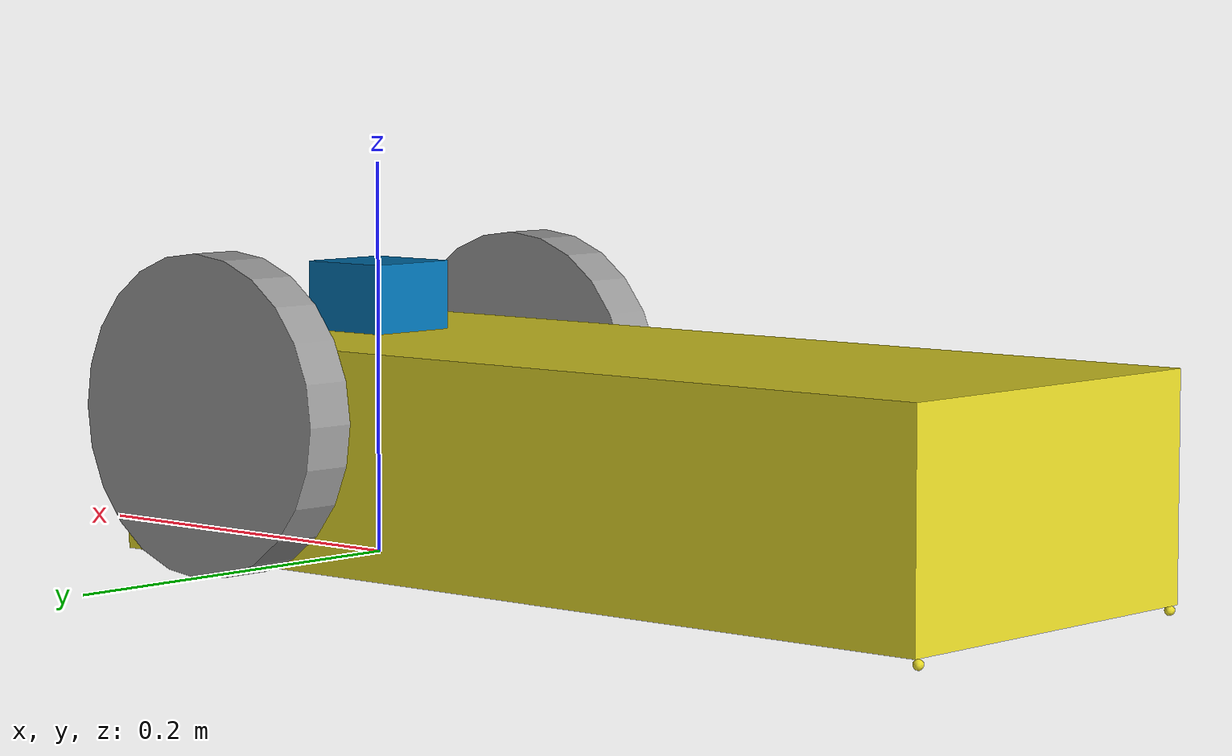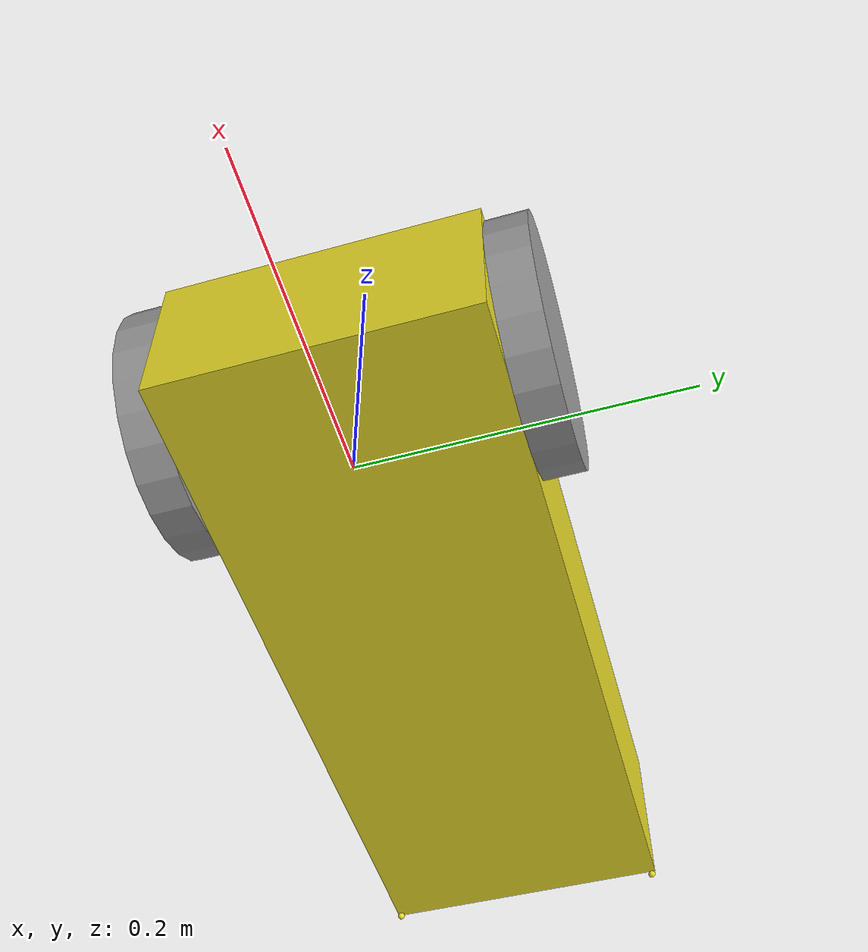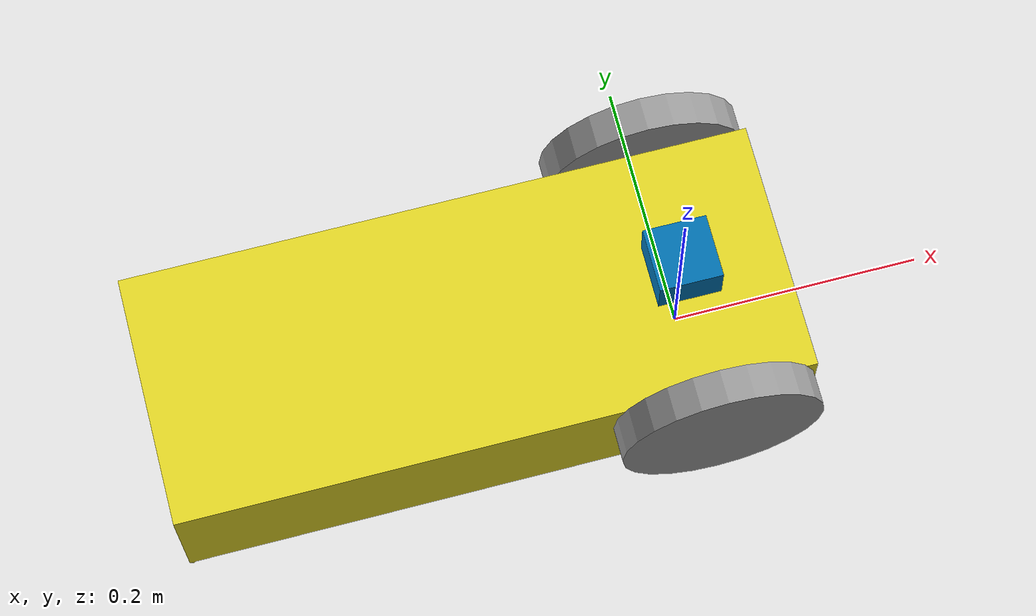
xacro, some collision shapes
<?xml version="1.0"?>
<!-- Revolute-Revolute Manipulator -->
<robot name="course_agv"
    xmlns:xacro="http://www.ros.org/wiki/xacro">

    <xacro:property name="PI" value="3.1415926535897931"/>
    <xacro:property name="mass" value="30" />
    <xacro:property name="length" value="0.5" />
    <xacro:property name="width" value="0.2" />
    <xacro:property name="height" value="0.11" />
    <xacro:property name="chassis_height" value="0.005" />
    <xacro:property name="caster_radius" value="${chassis_height/2}" />
    <xacro:property name="wheel_mass" value="0.1" />
    <xacro:property name="wheel_radius" value="0.08" />
    <xacro:property name="wheel_thickness" value="${wheel_radius/3}" />
    <xacro:property name="center_span" value="0.0" />
    <xacro:property name="camera_link" value="0.05" /> <!-- Size of square 'camera' box -->

    <!-- Import all Gazebo-customization elements, including Gazebo colors -->
    <xacro:include filename="$(find course_agv_description)/urdf/course_agv.gazebo" />
    <!-- Import Rviz colors -->
    <xacro:include filename="$(find course_agv_description)/urdf/materials.xacro" />

    <!-- joints -->
    <joint name="course_agv__left_wheel_joint" type="continuous">
        <parent link="robot_base"/>
        <child link="course_agv__left_wheel"/>
        <origin rpy="0 ${PI/2.0} ${PI/2.0}" xyz="0.0 ${(width / 2.0 + wheel_thickness / 2.0)} ${wheel_radius}"/>
        <axis xyz="9.00000000e-05   9.00000000e-05   1.00000000e+00"/>
        <limit effort="100" lower="0" upper="0" velocity="10"/>
    </joint>
    <joint name="course_agv__right_wheel_joint" type="continuous">
        <parent link="robot_base"/>
        <child link="course_agv__right_wheel"/>
        <origin rpy="0 ${PI/2.0} ${PI/2.0}" xyz="0.0 ${-(width / 2.0 + wheel_thickness / 2.0)}  ${wheel_radius}"/>
        <axis xyz="9.00000000e-05   9.00000000e-05   1.00000000e+00"/>
        <limit effort="100" lower="0" upper="0" velocity="10"/>
    </joint>
    <joint name="course_agv__hokuyo_joint" type="fixed">
        <parent link="robot_base"/>
        <child link="course_agv__hokuyo__link"/>
        <origin rpy="0  0  0" xyz="0.0 0.0 ${height+chassis_height+0.0495}"/>
        <axis xyz="0  0  0"/>
        <limit effort="0" lower="0" upper="0" velocity="0"/>
    </joint>
    <joint name="course_agv__imu_joint" type="fixed">
        <parent link="robot_base"/>
        <child link="course_agv__imu"/>
        <origin rpy="0  0  0" xyz="0.0 0.0 ${height/2+chassis_height}"/>
        <axis xyz="0  0  0"/>
        <limit effort="0" lower="0" upper="0" velocity="0"/>
    </joint>
    <joint name="course_agv__camera_joint" type="fixed">
        <parent link="robot_base"/>
        <child link="camera_link"/>
        <origin rpy="0  0  0" xyz="0.0 0.0 ${height/2+chassis_height}"/>
        <axis xyz="0  0  0"/>
        <limit effort="0" lower="0" upper="0" velocity="0"/>
    </joint>
    <joint name="course_agv__chassis_joint" type="fixed">
        <parent link="robot_base" />
        <child link="robot_chassis" />
        <origin xyz="${-center_span} 0.0 0.0" />
    </joint>

    <link name="robot_base">
    </link>
    <!-- chassis -->
    <link name="robot_chassis">
        <inertial>
            <mass value="${mass}"/>
            <origin rpy="0 0 0" xyz="0 0 0"/>
            <inertia ixx="${mass / 12.0 * (width*width + height*height)}" ixy="0" ixz="0" iyy="${mass / 12.0 * (length*length + height*height)}" iyz="0" izz="${mass / 12.0 * (width*width + length*length)}"/>
        </inertial>
        <collision name="course_agv__collision">
            <origin rpy="0 0 0" xyz="${-(length/2-wheel_radius)+center_span} 0.0 ${height/2.0+chassis_height}"/>
            <geometry>
                <box size="${length} ${width} ${height}"/>
            </geometry>
        </collision>
        <visual>
            <origin rpy="0 0 0" xyz="${-(length/2-wheel_radius)+center_span} 0.0 ${height/2.0+chassis_height}"/>
            <geometry>
                <box size="${length} ${width} ${height}"/>
            </geometry>
            <material name="yellow" />
        </visual>
        <collision name="course_agv__left_caster_collision">
            <origin rpy="0 0 0" xyz="${-(length-wheel_radius-center_span)} ${width/2-caster_radius} ${caster_radius}"/>
            <geometry>
                <sphere radius="${caster_radius}"/>
            </geometry>
        </collision>
        <visual>
            <origin rpy="0 0 0" xyz="${-(length-wheel_radius-center_span)} ${width/2-caster_radius} ${caster_radius}"/>
            <geometry>
                <sphere radius="${caster_radius}"/>
            </geometry>
            <material name="yellow" />
        </visual>
        <collision name="course_agv__right_caster_collision">
            <origin rpy="0 0 0" xyz="${-(length-wheel_radius-center_span-caster_radius)} ${-(width/2-caster_radius)} ${caster_radius}"/>
            <geometry>
                <sphere radius="${caster_radius}"/>
            </geometry>
        </collision>
        <visual>
            <origin rpy="0 0 0" xyz="${-(length-wheel_radius-center_span-caster_radius)} ${-(width/2-caster_radius)} ${caster_radius}"/>
            <geometry>
                <sphere radius="${caster_radius}"/>
            </geometry>
            <material name="yellow" />
        </visual>
    </link>
    <!-- left wheel -->
    <link name="course_agv__left_wheel">
        <inertial>
            <mass value="${wheel_mass}"/>
            <origin rpy="0 0 0" xyz="0 0 0"/>
            <inertia ixx="0" ixy="0" ixz="0" iyy="0" iyz="0" izz="0"/>
        </inertial>
        <collision name="course_agv__collision">
            <origin rpy="0 0 0" xyz="0.0 0.0 0.0"/>
            <geometry>
                <cylinder length="${wheel_thickness}" radius="${wheel_radius}"/>
            </geometry>
        </collision>
        <visual>
            <origin rpy="0 0 0" xyz="0.0 0.0 0.0"/>
            <geometry>
                <cylinder length="${wheel_thickness}" radius="${wheel_radius}"/>
            </geometry>
            <material name="grey" />
        </visual>
    </link>
    <!-- right wheel -->
    <link name="course_agv__right_wheel">
        <inertial>
            <mass value="${wheel_mass}"/>
            <origin rpy="0 0 0" xyz="0 0 0"/>
            <inertia ixx="0" ixy="0" ixz="0" iyy="0" iyz="0" izz="0"/>
        </inertial>
        <collision name="course_agv__collision">
            <origin rpy="0 0 0" xyz="0.0 0.0 0.0"/>
            <geometry>
                <cylinder length="${wheel_thickness}" radius="${wheel_radius}"/>
            </geometry>
        </collision>
        <visual>
            <origin rpy="0 0 0" xyz="0.0 0.0 0.0"/>
            <geometry>
                <cylinder length="${wheel_thickness}" radius="${wheel_radius}"/>
            </geometry>
            <material name="grey" />
        </visual>
    </link>
    <!-- hokuyo laser -->
    <link name="course_agv__hokuyo__link">
        <inertial>
            <mass value="1e-5"/>
            <origin rpy="0 0 0" xyz="0 0 0"/>
            <inertia ixx="0" ixy="0" ixz="0" iyy="0" iyz="0" izz="0"/>
        </inertial>
        <collision name="course_agv__hokuyo__collision-base">
            <origin rpy="0 0 0" xyz="0 0 -0.035"/>
            <geometry>
                <box size="0.05 0.05 0.041"/>
            </geometry>
        </collision>
        <collision name="course_agv__hokuyo__collision-top">
            <origin rpy="0 0 0" xyz="0 0 0"/>
            <geometry>
                <cylinder length="0.029" radius="0.021"/>
            </geometry>
        </collision>
        <visual>
            <origin rpy="0  0  0" xyz="0  0 -0.0205"/>
            <geometry>
                <mesh filename="package://course_agv_description/meshes/hokuyo.dae" scale="1.0 1.0 1.0"/>
            </geometry>
        </visual>
    </link>
    <!-- imu -->
    <link name="course_agv__imu">
        <collision>
            <origin xyz="0 0 0" rpy="0 0 0"/>
            <geometry>
                <box size="0.02 0.02 0.01"/>
            </geometry>
        </collision>
        <visual>
            <origin xyz="0 0 0" rpy="0 0 0"/>
            <geometry>
                <box size="0.02 0.02 0.01"/>
            </geometry>
            <material name="red"/>
        </visual>
        <inertial>
            <mass value="0.001" />
            <origin xyz="0 0 0" rpy="0 0 0"/>
            <inertia ixx="0.00000015" ixy="0" ixz="0" iyy="0.00000015" iyz="0" izz="0.00000015" />
        </inertial>
    </link>

    <!-- camera -->
    <link name="camera_link">
        <collision>
            <origin xyz="0 0 0" rpy="0 0 0"/>
            <geometry>
                <box size="0.02 0.02 0.01"/>
            </geometry>
        </collision>

        <visual>
            <origin xyz="0 0 0" rpy="0 0 0"/>
            <geometry>
                <box size="0.02 0.02 0.01"/>
            </geometry>
            <material name="red"/>
        </visual>

        <inertial>
            <mass value="1e-5" />
            <origin xyz="0 0 0" rpy="0 0 0"/>
            <inertia ixx="1e-6" ixy="0" ixz="0" iyy="1e-6" iyz="0" izz="1e-6" />
        </inertial>
    </link>

    <transmission name="tran_left_wheel">
        <type>transmission_interface/SimpleTransmission</type>
        <joint name="course_agv__left_wheel_joint">
            <hardwareInterface>hardware_interface/VelocityJointInterface</hardwareInterface>
        </joint>
        <actuator name="motor_left">
            <hardwareInterface>hardware_interface/VelocityJointInterface</hardwareInterface>
            <mechanicalReduction>1</mechanicalReduction>
        </actuator>
    </transmission>

    <transmission name="tran_right_wheel">
        <type>transmission_interface/SimpleTransmission</type>
        <joint name="course_agv__right_wheel_joint">
            <hardwareInterface>hardware_interface/VelocityJointInterface</hardwareInterface>
        </joint>
        <actuator name="motor_right">
            <hardwareInterface>hardware_interface/VelocityJointInterface</hardwareInterface>
            <mechanicalReduction>1</mechanicalReduction>
        </actuator>
    </transmission>
</robot>
